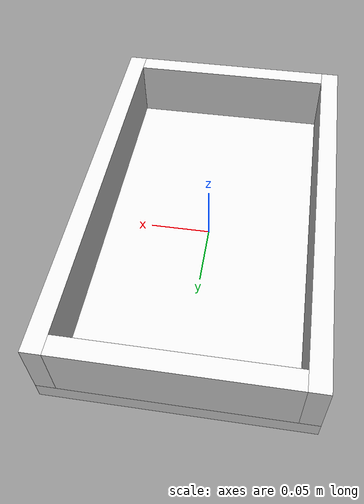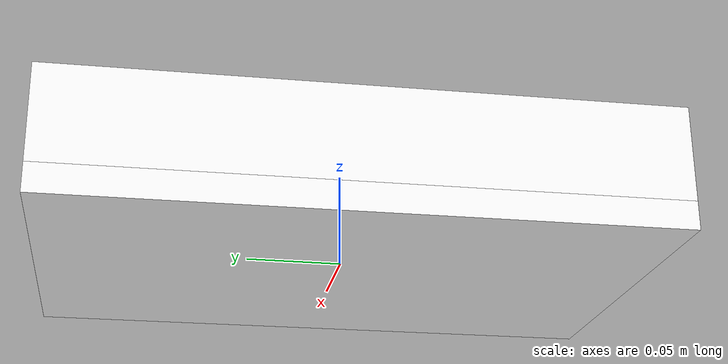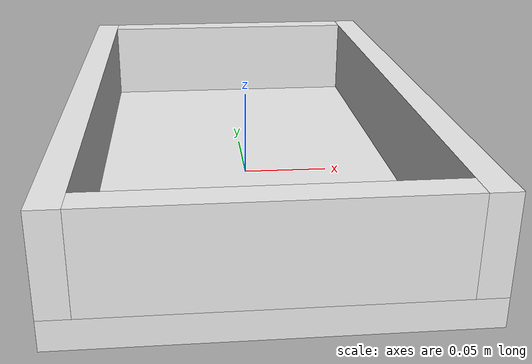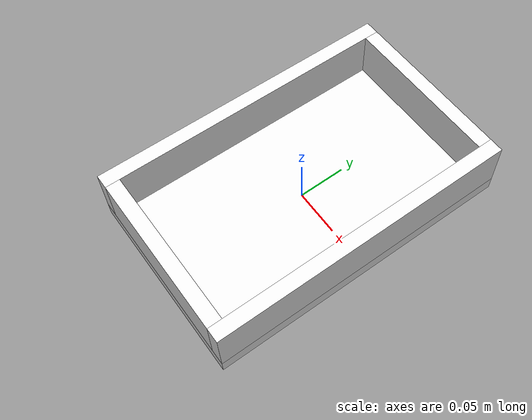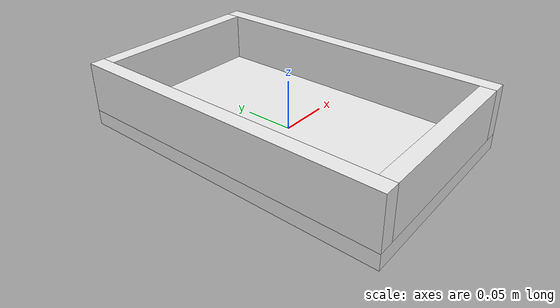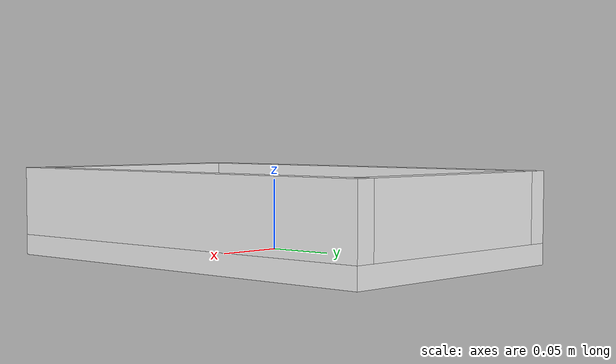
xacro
<robot xmlns:xacro="http://ros.org/wiki/xacro" name="tray">

  <xacro:property name="tray_width" value="0.2" />
  <xacro:property name="tray_length" value="0.32" />
  <xacro:property name="tray_height" value="0.05" />
  <xacro:property name="tray_thickness" value="0.015" />
  <xacro:property name="tray_density" value="100" />
  <xacro:property name="tray_base_name" value="tray_base" />

  <xacro:macro name="tray_part" params="name width length height mass material xPos:=0 yPos:=0">
    <link name="${name}">
      <inertial>
        <mass value="${tray_density * width * length * height}" />

        <inertia  ixx="${(1/12) * tray_density * width * length * height * (length**2 + height**2)}" ixy="0.0"  ixz="0.0"
                  iyy="${(1/12) * tray_density * width * length * height * (width**2 + height**2)}"  iyz="0.0"
                  izz="${(1/12) * tray_density * width * length * height * (width**2 + length**2)}" />
      </inertial>

      <visual>
        <geometry>
          <box size="${width} ${length} ${height}" />
        </geometry>
      </visual>

      <collision>
        <geometry>
          <box size="${width} ${length} ${height}" />
        </geometry>
      </collision>
    </link>

    <gazebo reference="${name}">
      <material>${material}</material>
       <mu1>1000</mu1>
       <mu2>1000</mu2>

      <collision>
          <surface>
            <friction>
              <torsional>
                <coefficient>0.456</coefficient>
                <use_patch_radius>true</use_patch_radius>
                <patch_radius>0.05</patch_radius>
              </torsional>
            </friction>
          </surface>
        </collision>
    </gazebo>

    <gazebo>
        <static>true</static>
    </gazebo>

    <xacro:if value="${xPos != 0 or yPos != 0}">
      <joint name="joint_${name}" type="fixed">
        <origin xyz="${xPos * (tray_width - tray_thickness) / 2} ${yPos * (tray_length - tray_thickness) / 2} ${(tray_height + tray_thickness) / 2}" />
        <parent link="${tray_base_name}" />
        <child link="${name}" />
      </joint>
    </xacro:if>

  </xacro:macro>

  <xacro:tray_part name="${tray_base_name}" width="${tray_width}" length="${tray_length}" height="${tray_thickness}" mass="0.01" material="Gazebo/White" />
  <xacro:tray_part name="tray_wall0" width="${tray_width - 2 * tray_thickness}" length="${tray_thickness}" height="${tray_height}" mass="0.01" material="Gazebo/White" yPos="-1" />
  <xacro:tray_part name="tray_wall1" width="${tray_width - 2 * tray_thickness}" length="${tray_thickness}" height="${tray_height}" mass="0.01" material="Gazebo/White" yPos="1" />
  <xacro:tray_part name="tray_wall2" width="${tray_thickness}" length="${tray_length}" height="${tray_height}" mass="0.01" material="Gazebo/White" xPos="-1" />
  <xacro:tray_part name="tray_wall3" width="${tray_thickness}" length="${tray_length}" height="${tray_height}" mass="0.01" material="Gazebo/White" xPos="1" />

</robot>
